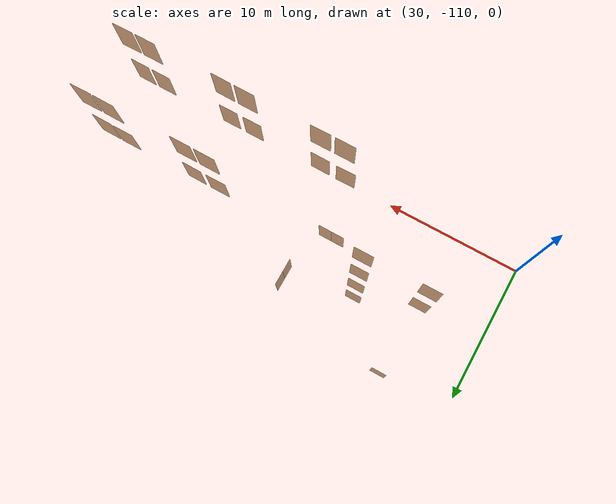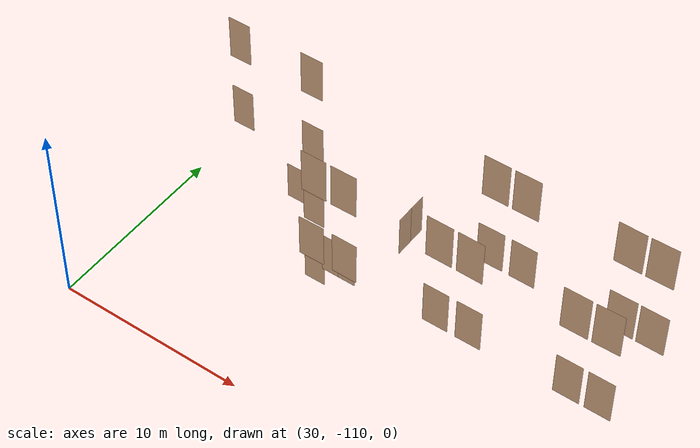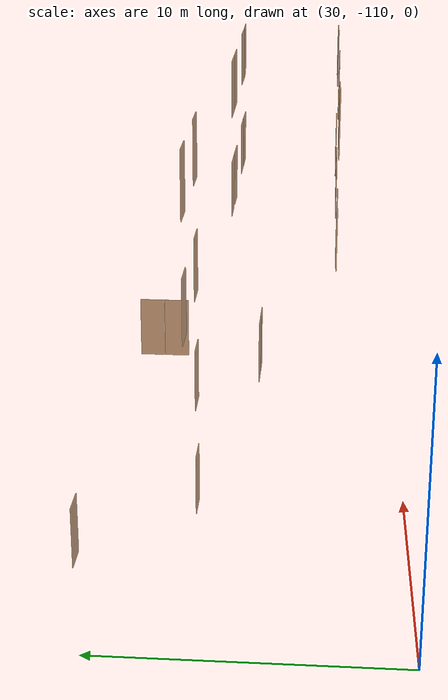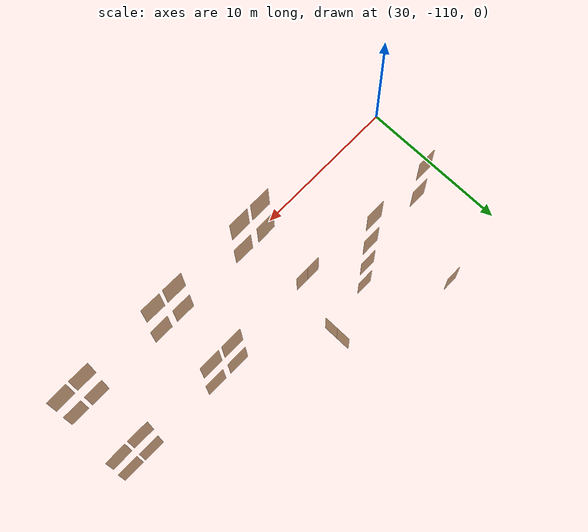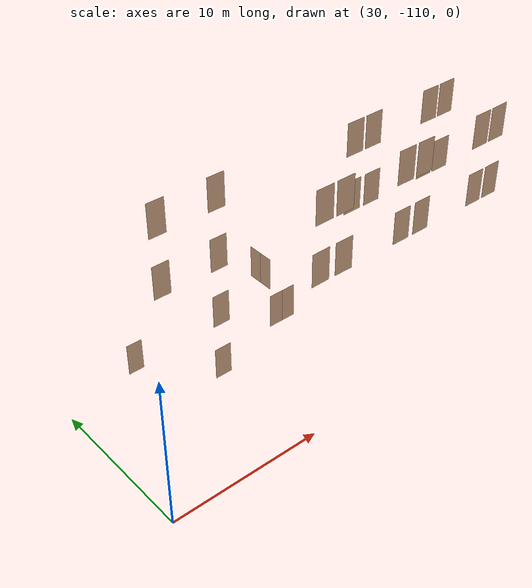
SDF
<sdf version="1.7">
 <world name="sim_world">
  <model name="Snull16">
   <pose>35.237146697532 -98.97069036329009 0.0 0 0 3.141592653589793</pose>
   <link name="right">
    <pose>0 0 1.11 0 0 0</pose>
    <visual name="right_visual">
     <geometry><box><size>1.0574308329910787 0.03 2.2</size></box></geometry>
     <material>
      <ambient>0.5 0.25 0 0.6</ambient>
      <diffuse>0.5 0.25 0 0.6</diffuse>
      <pbr><metal><metalness>0.0</metalness></metal></pbr>
     </material>
    </visual>
    <collision name="right_collision">
     <geometry><box><size>1.0574308329910787 0.03 2.2</size></box></geometry>
     <surface><contact><collide_bitmask>0x02</collide_bitmask></contact></surface>
    </collision>
    <inertial>
     <mass>50.0</mass>
     <inertia><ixx>20.17041666666667</ixx><iyy>24.8256665273342</iyy><izz>4.662749860667526</izz></inertia>
    </inertial>
   </link>
   <joint name="right_joint" type="revolute">
    <parent>world</parent>
    <child>right</child>
    <axis><xyz>0 0 -1</xyz><limit><lower>0</lower><upper>1.57</upper></limit></axis>
    <pose>0.5337154164955393 0 0 0 0 0</pose>
   </joint>
   <plugin name="register_component" filename="libregister_component.so">
    <component name="Door">
     <v_max_door>0.5</v_max_door>
     <a_max_door>0.3</a_max_door>
     <a_nom_door>0.15</a_nom_door>
     <dx_min_door>0.01</dx_min_door>
     <f_max_door>500.0</f_max_door>
     <ros_interface>true</ros_interface>
     <door name="Snull16" type="SwingDoor" left_joint_name="empty_joint" right_joint_name="right_joint"/>
    </component>
   </plugin>
  </model>
  <model name="Snull18">
   <pose>39.10863234141057 -102.68442668857105 0.0 0 0 0.0</pose>
   <link name="right">
    <pose>0 0 1.11 0 0 0</pose>
    <visual name="right_visual">
     <geometry><box><size>1.1415886943210134 0.03 2.2</size></box></geometry>
     <material>
      <ambient>0.5 0.25 0 0.6</ambient>
      <diffuse>0.5 0.25 0 0.6</diffuse>
      <pbr><metal><metalness>0.0</metalness></metal></pbr>
     </material>
    </visual>
    <collision name="right_collision">
     <geometry><box><size>1.1415886943210134 0.03 2.2</size></box></geometry>
     <surface><contact><collide_bitmask>0x02</collide_bitmask></contact></surface>
    </collision>
    <inertial>
     <mass>50.0</mass>
     <inertia><ixx>20.17041666666667</ixx><iyy>25.596769779173155</iyy><izz>5.433853112506484</izz></inertia>
    </inertial>
   </link>
   <joint name="right_joint" type="revolute">
    <parent>world</parent>
    <child>right</child>
    <axis><xyz>0 0 1</xyz><limit><lower>0</lower><upper>1.57</upper></limit></axis>
    <pose>0.5757943471605067 0 0 0 0 0</pose>
   </joint>
   <plugin name="register_component" filename="libregister_component.so">
    <component name="Door">
     <v_max_door>0.5</v_max_door>
     <a_max_door>0.3</a_max_door>
     <a_nom_door>0.15</a_nom_door>
     <dx_min_door>0.01</dx_min_door>
     <f_max_door>500.0</f_max_door>
     <ros_interface>true</ros_interface>
     <door name="Snull18" type="SwingDoor" left_joint_name="empty_joint" right_joint_name="right_joint"/>
    </component>
   </plugin>
  </model>
  <model name="0null18">
   <pose>39.10863234141057 -102.68442668857105 4.0 0 0 0.0</pose>
   <link name="right">
    <pose>0 0 1.11 0 0 0</pose>
    <visual name="right_visual">
     <geometry><box><size>1.1415886943210134 0.03 2.2</size></box></geometry>
     <material>
      <ambient>0.5 0.25 0 0.6</ambient>
      <diffuse>0.5 0.25 0 0.6</diffuse>
      <pbr><metal><metalness>0.0</metalness></metal></pbr>
     </material>
    </visual>
    <collision name="right_collision">
     <geometry><box><size>1.1415886943210134 0.03 2.2</size></box></geometry>
     <surface><contact><collide_bitmask>0x02</collide_bitmask></contact></surface>
    </collision>
    <inertial>
     <mass>50.0</mass>
     <inertia><ixx>20.17041666666667</ixx><iyy>25.596769779173155</iyy><izz>5.433853112506484</izz></inertia>
    </inertial>
   </link>
   <joint name="right_joint" type="revolute">
    <parent>world</parent>
    <child>right</child>
    <axis><xyz>0 0 1</xyz><limit><lower>0</lower><upper>1.57</upper></limit></axis>
    <pose>0.5757943471605067 0 0 0 0 0</pose>
   </joint>
   <plugin name="register_component" filename="libregister_component.so">
    <component name="Door">
     <v_max_door>0.5</v_max_door>
     <a_max_door>0.3</a_max_door>
     <a_nom_door>0.15</a_nom_door>
     <dx_min_door>0.01</dx_min_door>
     <f_max_door>500.0</f_max_door>
     <ros_interface>true</ros_interface>
     <door name="0null18" type="SwingDoor" left_joint_name="empty_joint" right_joint_name="right_joint"/>
    </component>
   </plugin>
  </model>
  <model name="0null48">
   <pose>43.39054624201916 -101.08589403726236 4.0 0 0 -1.5707963267948966</pose>
   <link name="right">
    <pose>0.450500317365492 0 1.11 0 0 0</pose>
    <visual name="right_visual">
     <geometry><box><size>0.891000634730984 0.03 2.2</size></box></geometry>
     <material>
      <ambient>0.5 0.25 0 0.6</ambient>
      <diffuse>0.5 0.25 0 0.6</diffuse>
      <pbr><metal><metalness>0.0</metalness></metal></pbr>
     </material>
    </visual>
    <collision name="right_collision">
     <geometry><box><size>0.891000634730984 0.03 2.2</size></box></geometry>
     <surface><contact><collide_bitmask>0x02</collide_bitmask></contact></surface>
    </collision>
    <inertial>
     <mass>50.0</mass>
     <inertia><ixx>20.17041666666667</ixx><iyy>23.474508879545905</iyy><izz>3.311592212879235</izz></inertia>
    </inertial>
   </link>
   <joint name="right_joint" type="revolute">
    <parent>world</parent>
    <child>right</child>
    <axis><xyz>0 0 1</xyz><limit><lower>0</lower><upper>1.57</upper></limit></axis>
    <pose>0.450500317365492 0 0 0 0 0</pose>
   </joint>
   <link name="left">
    <pose>-0.450500317365492 0 1.11 0 0 0</pose>
    <visual name="left_visual">
     <geometry><box><size>0.891000634730984 0.03 2.2</size></box></geometry>
     <material>
      <ambient>0.5 0.25 0 0.6</ambient>
      <diffuse>0.5 0.25 0 0.6</diffuse>
      <pbr><metal><metalness>0.0</metalness></metal></pbr>
     </material>
    </visual>
    <collision name="left_collision">
     <geometry><box><size>0.891000634730984 0.03 2.2</size></box></geometry>
     <surface><contact><collide_bitmask>0x02</collide_bitmask></contact></surface>
    </collision>
    <inertial>
     <mass>50.0</mass>
     <inertia><ixx>20.17041666666667</ixx><iyy>23.474508879545905</iyy><izz>3.311592212879235</izz></inertia>
    </inertial>
   </link>
   <joint name="left_joint" type="revolute">
    <parent>world</parent>
    <child>left</child>
    <axis><xyz>0 0 1</xyz><limit><lower>-1.57</lower><upper>0</upper></limit></axis>
    <pose>-0.450500317365492 0 0 0 0 0</pose>
   </joint>
   <plugin name="register_component" filename="libregister_component.so">
    <component name="Door">
     <v_max_door>0.5</v_max_door>
     <a_max_door>0.3</a_max_door>
     <a_nom_door>0.15</a_nom_door>
     <dx_min_door>0.01</dx_min_door>
     <f_max_door>500.0</f_max_door>
     <ros_interface>true</ros_interface>
     <door name="0null48" type="DoubleSwingDoor" left_joint_name="left_joint" right_joint_name="right_joint"/>
    </component>
   </plugin>
  </model>
  <model name="0null49">
   <pose>41.993503341671925 -104.73964828435942 4.0 0 0 3.136221550022283</pose>
   <link name="right">
    <pose>0.4448968329062206 0 1.11 0 0 0</pose>
    <visual name="right_visual">
     <geometry><box><size>0.8797936658124412 0.03 2.2</size></box></geometry>
     <material>
      <ambient>0.5 0.25 0 0.6</ambient>
      <diffuse>0.5 0.25 0 0.6</diffuse>
      <pbr><metal><metalness>0.0</metalness></metal></pbr>
     </material>
    </visual>
    <collision name="right_collision">
     <geometry><box><size>0.8797936658124412 0.03 2.2</size></box></geometry>
     <surface><contact><collide_bitmask>0x02</collide_bitmask></contact></surface>
    </collision>
    <inertial>
     <mass>50.0</mass>
     <inertia><ixx>20.17041666666667</ixx><iyy>23.39182039334873</iyy><izz>3.2289037266820566</izz></inertia>
    </inertial>
   </link>
   <joint name="right_joint" type="revolute">
    <parent>world</parent>
    <child>right</child>
    <axis><xyz>0 0 1</xyz><limit><lower>0</lower><upper>1.57</upper></limit></axis>
    <pose>0.4448968329062206 0 0 0 0 0</pose>
   </joint>
   <link name="left">
    <pose>-0.4448968329062206 0 1.11 0 0 0</pose>
    <visual name="left_visual">
     <geometry><box><size>0.8797936658124412 0.03 2.2</size></box></geometry>
     <material>
      <ambient>0.5 0.25 0 0.6</ambient>
      <diffuse>0.5 0.25 0 0.6</diffuse>
      <pbr><metal><metalness>0.0</metalness></metal></pbr>
     </material>
    </visual>
    <collision name="left_collision">
     <geometry><box><size>0.8797936658124412 0.03 2.2</size></box></geometry>
     <surface><contact><collide_bitmask>0x02</collide_bitmask></contact></surface>
    </collision>
    <inertial>
     <mass>50.0</mass>
     <inertia><ixx>20.17041666666667</ixx><iyy>23.39182039334873</iyy><izz>3.2289037266820566</izz></inertia>
    </inertial>
   </link>
   <joint name="left_joint" type="revolute">
    <parent>world</parent>
    <child>left</child>
    <axis><xyz>0 0 1</xyz><limit><lower>-1.57</lower><upper>0</upper></limit></axis>
    <pose>-0.4448968329062206 0 0 0 0 0</pose>
   </joint>
   <plugin name="register_component" filename="libregister_component.so">
    <component name="Door">
     <v_max_door>0.5</v_max_door>
     <a_max_door>0.3</a_max_door>
     <a_nom_door>0.15</a_nom_door>
     <dx_min_door>0.01</dx_min_door>
     <f_max_door>500.0</f_max_door>
     <ros_interface>true</ros_interface>
     <door name="0null49" type="DoubleSwingDoor" left_joint_name="left_joint" right_joint_name="right_joint"/>
    </component>
   </plugin>
  </model>
  <model name="1null17">
   <pose>35.226505619236065 -102.68442668857105 8.0 0 0 3.141592653589793</pose>
   <link name="right">
    <pose>0 0 1.11 0 0 0</pose>
    <visual name="right_visual">
     <geometry><box><size>1.1178422880185204 0.03 2.2</size></box></geometry>
     <material>
      <ambient>0.5 0.25 0 0.6</ambient>
      <diffuse>0.5 0.25 0 0.6</diffuse>
      <pbr><metal><metalness>0.0</metalness></metal></pbr>
     </material>
    </visual>
    <collision name="right_collision">
     <geometry><box><size>1.1178422880185204 0.03 2.2</size></box></geometry>
     <surface><contact><collide_bitmask>0x02</collide_bitmask></contact></surface>
    </collision>
    <inertial>
     <mass>50.0</mass>
     <inertia><ixx>20.17041666666667</ixx><iyy>25.37321408701034</iyy><izz>5.210297420343669</izz></inertia>
    </inertial>
   </link>
   <joint name="right_joint" type="revolute">
    <parent>world</parent>
    <child>right</child>
    <axis><xyz>0 0 -1</xyz><limit><lower>0</lower><upper>1.57</upper></limit></axis>
    <pose>0.5639211440092602 0 0 0 0 0</pose>
   </joint>
   <plugin name="register_component" filename="libregister_component.so">
    <component name="Door">
     <v_max_door>0.5</v_max_door>
     <a_max_door>0.3</a_max_door>
     <a_nom_door>0.15</a_nom_door>
     <dx_min_door>0.01</dx_min_door>
     <f_max_door>500.0</f_max_door>
     <ros_interface>true</ros_interface>
     <door name="1null17" type="SwingDoor" left_joint_name="empty_joint" right_joint_name="right_joint"/>
    </component>
   </plugin>
  </model>
  <model name="1null18">
   <pose>39.10863234141057 -102.68442668857105 8.0 0 0 0.0</pose>
   <link name="right">
    <pose>0 0 1.11 0 0 0</pose>
    <visual name="right_visual">
     <geometry><box><size>1.1415886943210134 0.03 2.2</size></box></geometry>
     <material>
      <ambient>0.5 0.25 0 0.6</ambient>
      <diffuse>0.5 0.25 0 0.6</diffuse>
      <pbr><metal><metalness>0.0</metalness></metal></pbr>
     </material>
    </visual>
    <collision name="right_collision">
     <geometry><box><size>1.1415886943210134 0.03 2.2</size></box></geometry>
     <surface><contact><collide_bitmask>0x02</collide_bitmask></contact></surface>
    </collision>
    <inertial>
     <mass>50.0</mass>
     <inertia><ixx>20.17041666666667</ixx><iyy>25.596769779173155</iyy><izz>5.433853112506484</izz></inertia>
    </inertial>
   </link>
   <joint name="right_joint" type="revolute">
    <parent>world</parent>
    <child>right</child>
    <axis><xyz>0 0 1</xyz><limit><lower>0</lower><upper>1.57</upper></limit></axis>
    <pose>0.5757943471605067 0 0 0 0 0</pose>
   </joint>
   <plugin name="register_component" filename="libregister_component.so">
    <component name="Door">
     <v_max_door>0.5</v_max_door>
     <a_max_door>0.3</a_max_door>
     <a_nom_door>0.15</a_nom_door>
     <dx_min_door>0.01</dx_min_door>
     <f_max_door>500.0</f_max_door>
     <ros_interface>true</ros_interface>
     <door name="1null18" type="SwingDoor" left_joint_name="empty_joint" right_joint_name="right_joint"/>
    </component>
   </plugin>
  </model>
  <model name="1null93">
   <pose>44.23892021058131 -107.39780831124213 8.0 0 0 3.1301681402699666</pose>
   <link name="right">
    <pose>0 0 1.11 0 0 0</pose>
    <visual name="right_visual">
     <geometry><box><size>1.2482682762474138 0.03 2.2</size></box></geometry>
     <material>
      <ambient>0.5 0.25 0 0.6</ambient>
      <diffuse>0.5 0.25 0 0.6</diffuse>
      <pbr><metal><metalness>0.0</metalness></metal></pbr>
     </material>
    </visual>
    <collision name="right_collision">
     <geometry><box><size>1.2482682762474138 0.03 2.2</size></box></geometry>
     <surface><contact><collide_bitmask>0x02</collide_bitmask></contact></surface>
    </collision>
    <inertial>
     <mass>50.0</mass>
     <inertia><ixx>20.17041666666667</ixx><iyy>26.659057039523713</iyy><izz>6.496140372857041</izz></inertia>
    </inertial>
   </link>
   <joint name="right_joint" type="revolute">
    <parent>world</parent>
    <child>right</child>
    <axis><xyz>0 0 -1</xyz><limit><lower>0</lower><upper>1.57</upper></limit></axis>
    <pose>0.6291341381237069 0 0 0 0 0</pose>
   </joint>
   <plugin name="register_component" filename="libregister_component.so">
    <component name="Door">
     <v_max_door>0.5</v_max_door>
     <a_max_door>0.3</a_max_door>
     <a_nom_door>0.15</a_nom_door>
     <dx_min_door>0.01</dx_min_door>
     <f_max_door>500.0</f_max_door>
     <ros_interface>true</ros_interface>
     <door name="1null93" type="SwingDoor" left_joint_name="empty_joint" right_joint_name="right_joint"/>
    </component>
   </plugin>
  </model>
  <model name="1null94">
   <pose>50.4494828809319 -107.39050890490229 8.0 0 0 -3.141410553983324</pose>
   <link name="right">
    <pose>0 0 1.11 0 0 0</pose>
    <visual name="right_visual">
     <geometry><box><size>1.220220682757675 0.03 2.2</size></box></geometry>
     <material>
      <ambient>0.5 0.25 0 0.6</ambient>
      <diffuse>0.5 0.25 0 0.6</diffuse>
      <pbr><metal><metalness>0.0</metalness></metal></pbr>
     </material>
    </visual>
    <collision name="right_collision">
     <geometry><box><size>1.220220682757675 0.03 2.2</size></box></geometry>
     <surface><contact><collide_bitmask>0x02</collide_bitmask></contact></surface>
    </collision>
    <inertial>
     <mass>50.0</mass>
     <inertia><ixx>20.17041666666667</ixx><iyy>26.37057714429003</iyy><izz>6.20766047762336</izz></inertia>
    </inertial>
   </link>
   <joint name="right_joint" type="revolute">
    <parent>world</parent>
    <child>right</child>
    <axis><xyz>0 0 -1</xyz><limit><lower>0</lower><upper>1.57</upper></limit></axis>
    <pose>0.6151103413788375 0 0 0 0 0</pose>
   </joint>
   <plugin name="register_component" filename="libregister_component.so">
    <component name="Door">
     <v_max_door>0.5</v_max_door>
     <a_max_door>0.3</a_max_door>
     <a_nom_door>0.15</a_nom_door>
     <dx_min_door>0.01</dx_min_door>
     <f_max_door>500.0</f_max_door>
     <ros_interface>true</ros_interface>
     <door name="1null94" type="SwingDoor" left_joint_name="empty_joint" right_joint_name="right_joint"/>
    </component>
   </plugin>
  </model>
  <model name="1null95">
   <pose>56.6030504424448 -107.39370122839108 8.0 0 0 3.1365184282962266</pose>
   <link name="right">
    <pose>0 0 1.11 0 0 0</pose>
    <visual name="right_visual">
     <geometry><box><size>1.204106658122132 0.03 2.2</size></box></geometry>
     <material>
      <ambient>0.5 0.25 0 0.6</ambient>
      <diffuse>0.5 0.25 0 0.6</diffuse>
      <pbr><metal><metalness>0.0</metalness></metal></pbr>
     </material>
    </visual>
    <collision name="right_collision">
     <geometry><box><size>1.204106658122132 0.03 2.2</size></box></geometry>
     <surface><contact><collide_bitmask>0x02</collide_bitmask></contact></surface>
    </collision>
    <inertial>
     <mass>50.0</mass>
     <inertia><ixx>20.17041666666667</ixx><iyy>26.20780351722521</iyy><izz>6.044886850558537</izz></inertia>
    </inertial>
   </link>
   <joint name="right_joint" type="revolute">
    <parent>world</parent>
    <child>right</child>
    <axis><xyz>0 0 -1</xyz><limit><lower>0</lower><upper>1.57</upper></limit></axis>
    <pose>0.607053329061066 0 0 0 0 0</pose>
   </joint>
   <plugin name="register_component" filename="libregister_component.so">
    <component name="Door">
     <v_max_door>0.5</v_max_door>
     <a_max_door>0.3</a_max_door>
     <a_nom_door>0.15</a_nom_door>
     <dx_min_door>0.01</dx_min_door>
     <f_max_door>500.0</f_max_door>
     <ros_interface>true</ros_interface>
     <door name="1null95" type="SwingDoor" left_joint_name="empty_joint" right_joint_name="right_joint"/>
    </component>
   </plugin>
  </model>
  <model name="1null96">
   <pose>42.52630399880518 -107.38250009334271 8.0 0 0 0.011822080263029867</pose>
   <link name="right">
    <pose>0 0 1.11 0 0 0</pose>
    <visual name="right_visual">
     <geometry><box><size>1.2564888307769841 0.03 2.2</size></box></geometry>
     <material>
      <ambient>0.5 0.25 0 0.6</ambient>
      <diffuse>0.5 0.25 0 0.6</diffuse>
      <pbr><metal><metalness>0.0</metalness></metal></pbr>
     </material>
    </visual>
    <collision name="right_collision">
     <geometry><box><size>1.2564888307769841 0.03 2.2</size></box></geometry>
     <surface><contact><collide_bitmask>0x02</collide_bitmask></contact></surface>
    </collision>
    <inertial>
     <mass>50.0</mass>
     <inertia><ixx>20.17041666666667</ixx><iyy>26.744850757780476</iyy><izz>6.581934091113802</izz></inertia>
    </inertial>
   </link>
   <joint name="right_joint" type="revolute">
    <parent>world</parent>
    <child>right</child>
    <axis><xyz>0 0 1</xyz><limit><lower>0</lower><upper>1.57</upper></limit></axis>
    <pose>0.6332444153884921 0 0 0 0 0</pose>
   </joint>
   <plugin name="register_component" filename="libregister_component.so">
    <component name="Door">
     <v_max_door>0.5</v_max_door>
     <a_max_door>0.3</a_max_door>
     <a_nom_door>0.15</a_nom_door>
     <dx_min_door>0.01</dx_min_door>
     <f_max_door>500.0</f_max_door>
     <ros_interface>true</ros_interface>
     <door name="1null96" type="SwingDoor" left_joint_name="empty_joint" right_joint_name="right_joint"/>
    </component>
   </plugin>
  </model>
  <model name="1null97">
   <pose>48.833607138856706 -107.3851510286375 8.0 0 0 -0.0022539405858351684</pose>
   <link name="right">
    <pose>0 0 1.11 0 0 0</pose>
    <visual name="right_visual">
     <geometry><box><size>1.2323957182842813 0.03 2.2</size></box></geometry>
     <material>
      <ambient>0.5 0.25 0 0.6</ambient>
      <diffuse>0.5 0.25 0 0.6</diffuse>
      <pbr><metal><metalness>0.0</metalness></metal></pbr>
     </material>
    </visual>
    <collision name="right_collision">
     <geometry><box><size>1.2323957182842813 0.03 2.2</size></box></geometry>
     <surface><contact><collide_bitmask>0x02</collide_bitmask></contact></surface>
    </collision>
    <inertial>
     <mass>50.0</mass>
     <inertia><ixx>20.17041666666667</ixx><iyy>26.49499669352263</iyy><izz>6.332080026855957</izz></inertia>
    </inertial>
   </link>
   <joint name="right_joint" type="revolute">
    <parent>world</parent>
    <child>right</child>
    <axis><xyz>0 0 1</xyz><limit><lower>0</lower><upper>1.57</upper></limit></axis>
    <pose>0.6211978591421407 0 0 0 0 0</pose>
   </joint>
   <plugin name="register_component" filename="libregister_component.so">
    <component name="Door">
     <v_max_door>0.5</v_max_door>
     <a_max_door>0.3</a_max_door>
     <a_nom_door>0.15</a_nom_door>
     <dx_min_door>0.01</dx_min_door>
     <f_max_door>500.0</f_max_door>
     <ros_interface>true</ros_interface>
     <door name="1null97" type="SwingDoor" left_joint_name="empty_joint" right_joint_name="right_joint"/>
    </component>
   </plugin>
  </model>
  <model name="1null98">
   <pose>55.14313183735949 -107.3888847403203 8.0 0 0 -0.00383811467201692</pose>
   <link name="right">
    <pose>0 0 1.11 0 0 0</pose>
    <visual name="right_visual">
     <geometry><box><size>1.2254569585401496 0.03 2.2</size></box></geometry>
     <material>
      <ambient>0.5 0.25 0 0.6</ambient>
      <diffuse>0.5 0.25 0 0.6</diffuse>
      <pbr><metal><metalness>0.0</metalness></metal></pbr>
     </material>
    </visual>
    <collision name="right_collision">
     <geometry><box><size>1.2254569585401496 0.03 2.2</size></box></geometry>
     <surface><contact><collide_bitmask>0x02</collide_bitmask></contact></surface>
    </collision>
    <inertial>
     <mass>50.0</mass>
     <inertia><ixx>20.17041666666667</ixx><iyy>26.42393648847698</iyy><izz>6.261019821810308</izz></inertia>
    </inertial>
   </link>
   <joint name="right_joint" type="revolute">
    <parent>world</parent>
    <child>right</child>
    <axis><xyz>0 0 1</xyz><limit><lower>0</lower><upper>1.57</upper></limit></axis>
    <pose>0.6177284792700748 0 0 0 0 0</pose>
   </joint>
   <plugin name="register_component" filename="libregister_component.so">
    <component name="Door">
     <v_max_door>0.5</v_max_door>
     <a_max_door>0.3</a_max_door>
     <a_nom_door>0.15</a_nom_door>
     <dx_min_door>0.01</dx_min_door>
     <f_max_door>500.0</f_max_door>
     <ros_interface>true</ros_interface>
     <door name="1null98" type="SwingDoor" left_joint_name="empty_joint" right_joint_name="right_joint"/>
    </component>
   </plugin>
  </model>
  <model name="1null99">
   <pose>48.83874099242053 -103.26221857148184 8.0 0 0 0.0031625448010696444</pose>
   <link name="right">
    <pose>0 0 1.11 0 0 0</pose>
    <visual name="right_visual">
     <geometry><box><size>1.288666091928061 0.03 2.2</size></box></geometry>
     <material>
      <ambient>0.5 0.25 0 0.6</ambient>
      <diffuse>0.5 0.25 0 0.6</diffuse>
      <pbr><metal><metalness>0.0</metalness></metal></pbr>
     </material>
    </visual>
    <collision name="right_collision">
     <geometry><box><size>1.288666091928061 0.03 2.2</size></box></geometry>
     <surface><contact><collide_bitmask>0x02</collide_bitmask></contact></surface>
    </collision>
    <inertial>
     <mass>50.0</mass>
     <inertia><ixx>20.17041666666667</ixx><iyy>27.086084568688094</iyy><izz>6.923167902021424</izz></inertia>
    </inertial>
   </link>
   <joint name="right_joint" type="revolute">
    <parent>world</parent>
    <child>right</child>
    <axis><xyz>0 0 -1</xyz><limit><lower>0</lower><upper>1.57</upper></limit></axis>
    <pose>0.6493330459640305 0 0 0 0 0</pose>
   </joint>
   <plugin name="register_component" filename="libregister_component.so">
    <component name="Door">
     <v_max_door>0.5</v_max_door>
     <a_max_door>0.3</a_max_door>
     <a_nom_door>0.15</a_nom_door>
     <dx_min_door>0.01</dx_min_door>
     <f_max_door>500.0</f_max_door>
     <ros_interface>true</ros_interface>
     <door name="1null99" type="SwingDoor" left_joint_name="empty_joint" right_joint_name="right_joint"/>
    </component>
   </plugin>
  </model>
  <model name="1null100">
   <pose>50.451835119292056 -103.27106746817003 8.0 0 0 3.1307173466037987</pose>
   <link name="right">
    <pose>0 0 1.11 0 0 0</pose>
    <visual name="right_visual">
     <geometry><box><size>1.2397098654138705 0.03 2.2</size></box></geometry>
     <material>
      <ambient>0.5 0.25 0 0.6</ambient>
      <diffuse>0.5 0.25 0 0.6</diffuse>
      <pbr><metal><metalness>0.0</metalness></metal></pbr>
     </material>
    </visual>
    <collision name="right_collision">
     <geometry><box><size>1.2397098654138705 0.03 2.2</size></box></geometry>
     <surface><contact><collide_bitmask>0x02</collide_bitmask></contact></surface>
    </collision>
    <inertial>
     <mass>50.0</mass>
     <inertia><ixx>20.17041666666667</ixx><iyy>26.570335626685324</iyy><izz>6.407418960018654</izz></inertia>
    </inertial>
   </link>
   <joint name="right_joint" type="revolute">
    <parent>world</parent>
    <child>right</child>
    <axis><xyz>0 0 1</xyz><limit><lower>0</lower><upper>1.57</upper></limit></axis>
    <pose>0.6248549327069353 0 0 0 0 0</pose>
   </joint>
   <plugin name="register_component" filename="libregister_component.so">
    <component name="Door">
     <v_max_door>0.5</v_max_door>
     <a_max_door>0.3</a_max_door>
     <a_nom_door>0.15</a_nom_door>
     <dx_min_door>0.01</dx_min_door>
     <f_max_door>500.0</f_max_door>
     <ros_interface>true</ros_interface>
     <door name="1null100" type="SwingDoor" left_joint_name="empty_joint" right_joint_name="right_joint"/>
    </component>
   </plugin>
  </model>
  <model name="1null101">
   <pose>55.16450733674342 -103.24313930478282 8.0 0 0 0.0</pose>
   <link name="right">
    <pose>0 0 1.11 0 0 0</pose>
    <visual name="right_visual">
     <geometry><box><size>1.3012048687600293 0.03 2.2</size></box></geometry>
     <material>
      <ambient>0.5 0.25 0 0.6</ambient>
      <diffuse>0.5 0.25 0 0.6</diffuse>
      <pbr><metal><metalness>0.0</metalness></metal></pbr>
     </material>
    </visual>
    <collision name="right_collision">
     <geometry><box><size>1.3012048687600293 0.03 2.2</size></box></geometry>
     <surface><contact><collide_bitmask>0x02</collide_bitmask></contact></surface>
    </collision>
    <inertial>
     <mass>50.0</mass>
     <inertia><ixx>20.17041666666667</ixx><iyy>27.221392127020025</iyy><izz>7.058475460353354</izz></inertia>
    </inertial>
   </link>
   <joint name="right_joint" type="revolute">
    <parent>world</parent>
    <child>right</child>
    <axis><xyz>0 0 -1</xyz><limit><lower>0</lower><upper>1.57</upper></limit></axis>
    <pose>0.6556024343800146 0 0 0 0 0</pose>
   </joint>
   <plugin name="register_component" filename="libregister_component.so">
    <component name="Door">
     <v_max_door>0.5</v_max_door>
     <a_max_door>0.3</a_max_door>
     <a_nom_door>0.15</a_nom_door>
     <dx_min_door>0.01</dx_min_door>
     <f_max_door>500.0</f_max_door>
     <ros_interface>true</ros_interface>
     <door name="1null101" type="SwingDoor" left_joint_name="empty_joint" right_joint_name="right_joint"/>
    </component>
   </plugin>
  </model>
  <model name="1null102">
   <pose>56.61451293731095 -103.25495650225884 8.0 0 0 3.1323386679214464</pose>
   <link name="right">
    <pose>0 0 1.11 0 0 0</pose>
    <visual name="right_visual">
     <geometry><box><size>1.3012983528134472 0.03 2.2</size></box></geometry>
     <material>
      <ambient>0.5 0.25 0 0.6</ambient>
      <diffuse>0.5 0.25 0 0.6</diffuse>
      <pbr><metal><metalness>0.0</metalness></metal></pbr>
     </material>
    </visual>
    <collision name="right_collision">
     <geometry><box><size>1.3012983528134472 0.03 2.2</size></box></geometry>
     <surface><contact><collide_bitmask>0x02</collide_bitmask></contact></surface>
    </collision>
    <inertial>
     <mass>50.0</mass>
     <inertia><ixx>20.17041666666667</ixx><iyy>27.222405845979136</iyy><izz>7.059489179312462</izz></inertia>
    </inertial>
   </link>
   <joint name="right_joint" type="revolute">
    <parent>world</parent>
    <child>right</child>
    <axis><xyz>0 0 1</xyz><limit><lower>0</lower><upper>1.57</upper></limit></axis>
    <pose>0.6556491764067236 0 0 0 0 0</pose>
   </joint>
   <plugin name="register_component" filename="libregister_component.so">
    <component name="Door">
     <v_max_door>0.5</v_max_door>
     <a_max_door>0.3</a_max_door>
     <a_nom_door>0.15</a_nom_door>
     <dx_min_door>0.01</dx_min_door>
     <f_max_door>500.0</f_max_door>
     <ros_interface>true</ros_interface>
     <door name="1null102" type="SwingDoor" left_joint_name="empty_joint" right_joint_name="right_joint"/>
    </component>
   </plugin>
  </model>
  <model name="2null17">
   <pose>35.226505619236065 -102.68442668857105 12.0 0 0 3.141592653589793</pose>
   <link name="right">
    <pose>0 0 1.11 0 0 0</pose>
    <visual name="right_visual">
     <geometry><box><size>1.1178422880185204 0.03 2.2</size></box></geometry>
     <material>
      <ambient>0.5 0.25 0 0.6</ambient>
      <diffuse>0.5 0.25 0 0.6</diffuse>
      <pbr><metal><metalness>0.0</metalness></metal></pbr>
     </material>
    </visual>
    <collision name="right_collision">
     <geometry><box><size>1.1178422880185204 0.03 2.2</size></box></geometry>
     <surface><contact><collide_bitmask>0x02</collide_bitmask></contact></surface>
    </collision>
    <inertial>
     <mass>50.0</mass>
     <inertia><ixx>20.17041666666667</ixx><iyy>25.37321408701034</iyy><izz>5.210297420343669</izz></inertia>
    </inertial>
   </link>
   <joint name="right_joint" type="revolute">
    <parent>world</parent>
    <child>right</child>
    <axis><xyz>0 0 -1</xyz><limit><lower>0</lower><upper>1.57</upper></limit></axis>
    <pose>0.5639211440092602 0 0 0 0 0</pose>
   </joint>
   <plugin name="register_component" filename="libregister_component.so">
    <component name="Door">
     <v_max_door>0.5</v_max_door>
     <a_max_door>0.3</a_max_door>
     <a_nom_door>0.15</a_nom_door>
     <dx_min_door>0.01</dx_min_door>
     <f_max_door>500.0</f_max_door>
     <ros_interface>true</ros_interface>
     <door name="2null17" type="SwingDoor" left_joint_name="empty_joint" right_joint_name="right_joint"/>
    </component>
   </plugin>
  </model>
  <model name="2null18">
   <pose>39.10863234141057 -102.68442668857105 12.0 0 0 0.0</pose>
   <link name="right">
    <pose>0 0 1.11 0 0 0</pose>
    <visual name="right_visual">
     <geometry><box><size>1.1415886943210134 0.03 2.2</size></box></geometry>
     <material>
      <ambient>0.5 0.25 0 0.6</ambient>
      <diffuse>0.5 0.25 0 0.6</diffuse>
      <pbr><metal><metalness>0.0</metalness></metal></pbr>
     </material>
    </visual>
    <collision name="right_collision">
     <geometry><box><size>1.1415886943210134 0.03 2.2</size></box></geometry>
     <surface><contact><collide_bitmask>0x02</collide_bitmask></contact></surface>
    </collision>
    <inertial>
     <mass>50.0</mass>
     <inertia><ixx>20.17041666666667</ixx><iyy>25.596769779173155</iyy><izz>5.433853112506484</izz></inertia>
    </inertial>
   </link>
   <joint name="right_joint" type="revolute">
    <parent>world</parent>
    <child>right</child>
    <axis><xyz>0 0 1</xyz><limit><lower>0</lower><upper>1.57</upper></limit></axis>
    <pose>0.5757943471605067 0 0 0 0 0</pose>
   </joint>
   <plugin name="register_component" filename="libregister_component.so">
    <component name="Door">
     <v_max_door>0.5</v_max_door>
     <a_max_door>0.3</a_max_door>
     <a_nom_door>0.15</a_nom_door>
     <dx_min_door>0.01</dx_min_door>
     <f_max_door>500.0</f_max_door>
     <ros_interface>true</ros_interface>
     <door name="2null18" type="SwingDoor" left_joint_name="empty_joint" right_joint_name="right_joint"/>
    </component>
   </plugin>
  </model>
  <model name="2null86">
   <pose>44.19411567038791 -107.3840869208079 12.0 0 0 -3.1343020960266785</pose>
   <link name="right">
    <pose>0 0 1.11 0 0 0</pose>
    <visual name="right_visual">
     <geometry><box><size>1.2600931200068013 0.03 2.2</size></box></geometry>
     <material>
      <ambient>0.5 0.25 0 0.6</ambient>
      <diffuse>0.5 0.25 0 0.6</diffuse>
      <pbr><metal><metalness>0.0</metalness></metal></pbr>
     </material>
    </visual>
    <collision name="right_collision">
     <geometry><box><size>1.2600931200068013 0.03 2.2</size></box></geometry>
     <surface><contact><collide_bitmask>0x02</collide_bitmask></contact></surface>
    </collision>
    <inertial>
     <mass>50.0</mass>
     <inertia><ixx>20.17041666666667</ixx><iyy>26.782644462868653</iyy><izz>6.619727796201979</izz></inertia>
    </inertial>
   </link>
   <joint name="right_joint" type="revolute">
    <parent>world</parent>
    <child>right</child>
    <axis><xyz>0 0 -1</xyz><limit><lower>0</lower><upper>1.57</upper></limit></axis>
    <pose>0.6350465600034007 0 0 0 0 0</pose>
   </joint>
   <plugin name="register_component" filename="libregister_component.so">
    <component name="Door">
     <v_max_door>0.5</v_max_door>
     <a_max_door>0.3</a_max_door>
     <a_nom_door>0.15</a_nom_door>
     <dx_min_door>0.01</dx_min_door>
     <f_max_door>500.0</f_max_door>
     <ros_interface>true</ros_interface>
     <door name="2null86" type="SwingDoor" left_joint_name="empty_joint" right_joint_name="right_joint"/>
    </component>
   </plugin>
  </model>
  <model name="2null87">
   <pose>50.32134189597876 -107.39881641339649 12.0 0 0 3.1249858672603303</pose>
   <link name="right">
    <pose>0 0 1.11 0 0 0</pose>
    <visual name="right_visual">
     <geometry><box><size>1.2378665007325451 0.03 2.2</size></box></geometry>
     <material>
      <ambient>0.5 0.25 0 0.6</ambient>
      <diffuse>0.5 0.25 0 0.6</diffuse>
      <pbr><metal><metalness>0.0</metalness></metal></pbr>
     </material>
    </visual>
    <collision name="right_collision">
     <geometry><box><size>1.2378665007325451 0.03 2.2</size></box></geometry>
     <surface><contact><collide_bitmask>0x02</collide_bitmask></contact></surface>
    </collision>
    <inertial>
     <mass>50.0</mass>
     <inertia><ixx>20.17041666666667</ixx><iyy>26.551306140149322</iyy><izz>6.3883894734826505</izz></inertia>
    </inertial>
   </link>
   <joint name="right_joint" type="revolute">
    <parent>world</parent>
    <child>right</child>
    <axis><xyz>0 0 -1</xyz><limit><lower>0</lower><upper>1.57</upper></limit></axis>
    <pose>0.6239332503662726 0 0 0 0 0</pose>
   </joint>
   <plugin name="register_component" filename="libregister_component.so">
    <component name="Door">
     <v_max_door>0.5</v_max_door>
     <a_max_door>0.3</a_max_door>
     <a_nom_door>0.15</a_nom_door>
     <dx_min_door>0.01</dx_min_door>
     <f_max_door>500.0</f_max_door>
     <ros_interface>true</ros_interface>
     <door name="2null87" type="SwingDoor" left_joint_name="empty_joint" right_joint_name="right_joint"/>
    </component>
   </plugin>
  </model>
  <model name="2null88">
   <pose>56.541686890938244 -107.38143598551312 12.0 0 0 -3.1303392988105676</pose>
   <link name="right">
    <pose>0 0 1.11 0 0 0</pose>
    <visual name="right_visual">
     <geometry><box><size>1.257451346505099 0.03 2.2</size></box></geometry>
     <material>
      <ambient>0.5 0.25 0 0.6</ambient>
      <diffuse>0.5 0.25 0 0.6</diffuse>
      <pbr><metal><metalness>0.0</metalness></metal></pbr>
     </material>
    </visual>
    <collision name="right_collision">
     <geometry><box><size>1.257451346505099 0.03 2.2</size></box></geometry>
     <surface><contact><collide_bitmask>0x02</collide_bitmask></contact></surface>
    </collision>
    <inertial>
     <mass>50.0</mass>
     <inertia><ixx>20.17041666666667</ixx><iyy>26.754932870114533</iyy><izz>6.5920162034478595</izz></inertia>
    </inertial>
   </link>
   <joint name="right_joint" type="revolute">
    <parent>world</parent>
    <child>right</child>
    <axis><xyz>0 0 -1</xyz><limit><lower>0</lower><upper>1.57</upper></limit></axis>
    <pose>0.6337256732525495 0 0 0 0 0</pose>
   </joint>
   <plugin name="register_component" filename="libregister_component.so">
    <component name="Door">
     <v_max_door>0.5</v_max_door>
     <a_max_door>0.3</a_max_door>
     <a_nom_door>0.15</a_nom_door>
     <dx_min_door>0.01</dx_min_door>
     <f_max_door>500.0</f_max_door>
     <ros_interface>true</ros_interface>
     <door name="2null88" type="SwingDoor" left_joint_name="empty_joint" right_joint_name="right_joint"/>
    </component>
   </plugin>
  </model>
  <model name="2null89">
   <pose>42.7001456147556 -107.38498301161178 12.0 0 0 -0.0033157555079758295</pose>
   <link name="right">
    <pose>0 0 1.11 0 0 0</pose>
    <visual name="right_visual">
     <geometry><box><size>1.2511800650591312 0.03 2.2</size></box></geometry>
     <material>
      <ambient>0.5 0.25 0 0.6</ambient>
      <diffuse>0.5 0.25 0 0.6</diffuse>
      <pbr><metal><metalness>0.0</metalness></metal></pbr>
     </material>
    </visual>
    <collision name="right_collision">
     <geometry><box><size>1.2511800650591312 0.03 2.2</size></box></geometry>
     <surface><contact><collide_bitmask>0x02</collide_bitmask></contact></surface>
    </collision>
    <inertial>
     <mass>50.0</mass>
     <inertia><ixx>20.17041666666667</ixx><iyy>26.689381480005718</iyy><izz>6.526464813339048</izz></inertia>
    </inertial>
   </link>
   <joint name="right_joint" type="revolute">
    <parent>world</parent>
    <child>right</child>
    <axis><xyz>0 0 1</xyz><limit><lower>0</lower><upper>1.57</upper></limit></axis>
    <pose>0.6305900325295656 0 0 0 0 0</pose>
   </joint>
   <plugin name="register_component" filename="libregister_component.so">
    <component name="Door">
     <v_max_door>0.5</v_max_door>
     <a_max_door>0.3</a_max_door>
     <a_nom_door>0.15</a_nom_door>
     <dx_min_door>0.01</dx_min_door>
     <f_max_door>500.0</f_max_door>
     <ros_interface>true</ros_interface>
     <door name="2null89" type="SwingDoor" left_joint_name="empty_joint" right_joint_name="right_joint"/>
    </component>
   </plugin>
  </model>
  <model name="2null90">
   <pose>48.857764253444316 -107.38500168017019 12.0 0 0 -0.010863667807178838</pose>
   <link name="right">
    <pose>0 0 1.11 0 0 0</pose>
    <visual name="right_visual">
     <geometry><box><size>1.2513595752025057 0.03 2.2</size></box></geometry>
     <material>
      <ambient>0.5 0.25 0 0.6</ambient>
      <diffuse>0.5 0.25 0 0.6</diffuse>
      <pbr><metal><metalness>0.0</metalness></metal></pbr>
     </material>
    </visual>
    <collision name="right_collision">
     <geometry><box><size>1.2513595752025057 0.03 2.2</size></box></geometry>
     <surface><contact><collide_bitmask>0x02</collide_bitmask></contact></surface>
    </collision>
    <inertial>
     <mass>50.0</mass>
     <inertia><ixx>20.17041666666667</ixx><iyy>26.691253276879152</iyy><izz>6.528336610212481</izz></inertia>
    </inertial>
   </link>
   <joint name="right_joint" type="revolute">
    <parent>world</parent>
    <child>right</child>
    <axis><xyz>0 0 1</xyz><limit><lower>0</lower><upper>1.57</upper></limit></axis>
    <pose>0.6306797876012529 0 0 0 0 0</pose>
   </joint>
   <plugin name="register_component" filename="libregister_component.so">
    <component name="Door">
     <v_max_door>0.5</v_max_door>
     <a_max_door>0.3</a_max_door>
     <a_nom_door>0.15</a_nom_door>
     <dx_min_door>0.01</dx_min_door>
     <f_max_door>500.0</f_max_door>
     <ros_interface>true</ros_interface>
     <door name="2null90" type="SwingDoor" left_joint_name="empty_joint" right_joint_name="right_joint"/>
    </component>
   </plugin>
  </model>
  <model name="2null91">
   <pose>55.11132061382216 -107.38796998095799 12.0 0 0 -0.004196812954206581</pose>
   <link name="right">
    <pose>0 0 1.11 0 0 0</pose>
    <visual name="right_visual">
     <geometry><box><size>1.2533124733658354 0.03 2.2</size></box></geometry>
     <material>
      <ambient>0.5 0.25 0 0.6</ambient>
      <diffuse>0.5 0.25 0 0.6</diffuse>
      <pbr><metal><metalness>0.0</metalness></metal></pbr>
     </material>
    </visual>
    <collision name="right_collision">
     <geometry><box><size>1.2533124733658354 0.03 2.2</size></box></geometry>
     <surface><contact><collide_bitmask>0x02</collide_bitmask></contact></surface>
    </collision>
    <inertial>
     <mass>50.0</mass>
     <inertia><ixx>20.17041666666667</ixx><iyy>26.71163398289329</iyy><izz>6.548717316226616</izz></inertia>
    </inertial>
   </link>
   <joint name="right_joint" type="revolute">
    <parent>world</parent>
    <child>right</child>
    <axis><xyz>0 0 1</xyz><limit><lower>0</lower><upper>1.57</upper></limit></axis>
    <pose>0.6316562366829177 0 0 0 0 0</pose>
   </joint>
   <plugin name="register_component" filename="libregister_component.so">
    <component name="Door">
     <v_max_door>0.5</v_max_door>
     <a_max_door>0.3</a_max_door>
     <a_nom_door>0.15</a_nom_door>
     <dx_min_door>0.01</dx_min_door>
     <f_max_door>500.0</f_max_door>
     <ros_interface>true</ros_interface>
     <door name="2null91" type="SwingDoor" left_joint_name="empty_joint" right_joint_name="right_joint"/>
    </component>
   </plugin>
  </model>
  <model name="2null92">
   <pose>48.86166598215283 -103.26010902438108 12.0 0 0 -0.004001380595488037</pose>
   <link name="right">
    <pose>0 0 1.11 0 0 0</pose>
    <visual name="right_visual">
     <geometry><box><size>1.268358439866204 0.03 2.2</size></box></geometry>
     <material>
      <ambient>0.5 0.25 0 0.6</ambient>
      <diffuse>0.5 0.25 0 0.6</diffuse>
      <pbr><metal><metalness>0.0</metalness></metal></pbr>
     </material>
    </visual>
    <collision name="right_collision">
     <geometry><box><size>1.268358439866204 0.03 2.2</size></box></geometry>
     <surface><contact><collide_bitmask>0x02</collide_bitmask></contact></surface>
    </collision>
    <inertial>
     <mass>50.0</mass>
     <inertia><ixx>20.17041666666667</ixx><iyy>26.869721383249303</iyy><izz>6.70680471658263</izz></inertia>
    </inertial>
   </link>
   <joint name="right_joint" type="revolute">
    <parent>world</parent>
    <child>right</child>
    <axis><xyz>0 0 -1</xyz><limit><lower>0</lower><upper>1.57</upper></limit></axis>
    <pose>0.639179219933102 0 0 0 0 0</pose>
   </joint>
   <plugin name="register_component" filename="libregister_component.so">
    <component name="Door">
     <v_max_door>0.5</v_max_door>
     <a_max_door>0.3</a_max_door>
     <a_nom_door>0.15</a_nom_door>
     <dx_min_door>0.01</dx_min_door>
     <f_max_door>500.0</f_max_door>
     <ros_interface>true</ros_interface>
     <door name="2null92" type="SwingDoor" left_joint_name="empty_joint" right_joint_name="right_joint"/>
    </component>
   </plugin>
  </model>
  <model name="2null93">
   <pose>50.32707314341184 -103.26429078146579 12.0 0 0 -3.1397338099854477</pose>
   <link name="right">
    <pose>0 0 1.11 0 0 0</pose>
    <visual name="right_visual">
     <geometry><box><size>1.255431749751349 0.03 2.2</size></box></geometry>
     <material>
      <ambient>0.5 0.25 0 0.6</ambient>
      <diffuse>0.5 0.25 0 0.6</diffuse>
      <pbr><metal><metalness>0.0</metalness></metal></pbr>
     </material>
    </visual>
    <collision name="right_collision">
     <geometry><box><size>1.255431749751349 0.03 2.2</size></box></geometry>
     <surface><contact><collide_bitmask>0x02</collide_bitmask></contact></surface>
    </collision>
    <inertial>
     <mass>50.0</mass>
     <inertia><ixx>20.17041666666667</ixx><iyy>26.7337869928489</iyy><izz>6.5708703261822246</izz></inertia>
    </inertial>
   </link>
   <joint name="right_joint" type="revolute">
    <parent>world</parent>
    <child>right</child>
    <axis><xyz>0 0 1</xyz><limit><lower>0</lower><upper>1.57</upper></limit></axis>
    <pose>0.6327158748756745 0 0 0 0 0</pose>
   </joint>
   <plugin name="register_component" filename="libregister_component.so">
    <component name="Door">
     <v_max_door>0.5</v_max_door>
     <a_max_door>0.3</a_max_door>
     <a_nom_door>0.15</a_nom_door>
     <dx_min_door>0.01</dx_min_door>
     <f_max_door>500.0</f_max_door>
     <ros_interface>true</ros_interface>
     <door name="2null93" type="SwingDoor" left_joint_name="empty_joint" right_joint_name="right_joint"/>
    </component>
   </plugin>
  </model>
  <model name="2null94">
   <pose>55.10517865810399 -103.26333868498668 12.0 0 0 -0.011713749929440909</pose>
   <link name="right">
    <pose>0 0 1.11 0 0 0</pose>
    <visual name="right_visual">
     <geometry><box><size>1.2968887483177105 0.03 2.2</size></box></geometry>
     <material>
      <ambient>0.5 0.25 0 0.6</ambient>
      <diffuse>0.5 0.25 0 0.6</diffuse>
      <pbr><metal><metalness>0.0</metalness></metal></pbr>
     </material>
    </visual>
    <collision name="right_collision">
     <geometry><box><size>1.2968887483177105 0.03 2.2</size></box></geometry>
     <surface><contact><collide_bitmask>0x02</collide_bitmask></contact></surface>
    </collision>
    <inertial>
     <mass>50.0</mass>
     <inertia><ixx>20.17041666666667</ixx><iyy>27.17466843963783</iyy><izz>7.0117517729711585</izz></inertia>
    </inertial>
   </link>
   <joint name="right_joint" type="revolute">
    <parent>world</parent>
    <child>right</child>
    <axis><xyz>0 0 -1</xyz><limit><lower>0</lower><upper>1.57</upper></limit></axis>
    <pose>0.6534443741588553 0 0 0 0 0</pose>
   </joint>
   <plugin name="register_component" filename="libregister_component.so">
    <component name="Door">
     <v_max_door>0.5</v_max_door>
     <a_max_door>0.3</a_max_door>
     <a_nom_door>0.15</a_nom_door>
     <dx_min_door>0.01</dx_min_door>
     <f_max_door>500.0</f_max_door>
     <ros_interface>true</ros_interface>
     <door name="2null94" type="SwingDoor" left_joint_name="empty_joint" right_joint_name="right_joint"/>
    </component>
   </plugin>
  </model>
  <model name="2null95">
   <pose>56.544300489116196 -103.26238658850757 12.0 0 0 -3.129282222118571</pose>
   <link name="right">
    <pose>0 0 1.11 0 0 0</pose>
    <visual name="right_visual">
     <geometry><box><size>1.25477865651261 0.03 2.2</size></box></geometry>
     <material>
      <ambient>0.5 0.25 0 0.6</ambient>
      <diffuse>0.5 0.25 0 0.6</diffuse>
      <pbr><metal><metalness>0.0</metalness></metal></pbr>
     </material>
    </visual>
    <collision name="right_collision">
     <geometry><box><size>1.25477865651261 0.03 2.2</size></box></geometry>
     <surface><contact><collide_bitmask>0x02</collide_bitmask></contact></surface>
    </collision>
    <inertial>
     <mass>50.0</mass>
     <inertia><ixx>20.17041666666667</ixx><iyy>26.7269561534983</iyy><izz>6.564039486831628</izz></inertia>
    </inertial>
   </link>
   <joint name="right_joint" type="revolute">
    <parent>world</parent>
    <child>right</child>
    <axis><xyz>0 0 1</xyz><limit><lower>0</lower><upper>1.57</upper></limit></axis>
    <pose>0.632389328256305 0 0 0 0 0</pose>
   </joint>
   <plugin name="register_component" filename="libregister_component.so">
    <component name="Door">
     <v_max_door>0.5</v_max_door>
     <a_max_door>0.3</a_max_door>
     <a_nom_door>0.15</a_nom_door>
     <dx_min_door>0.01</dx_min_door>
     <f_max_door>500.0</f_max_door>
     <ros_interface>true</ros_interface>
     <door name="2null95" type="SwingDoor" left_joint_name="empty_joint" right_joint_name="right_joint"/>
    </component>
   </plugin>
  </model>
 </world>
</sdf>
